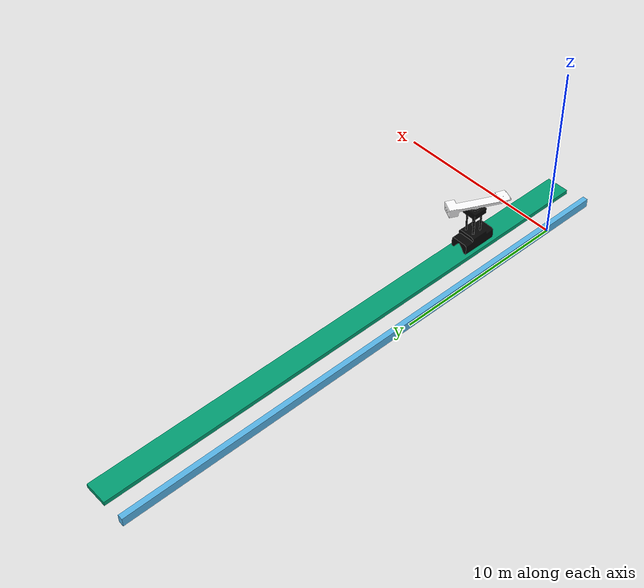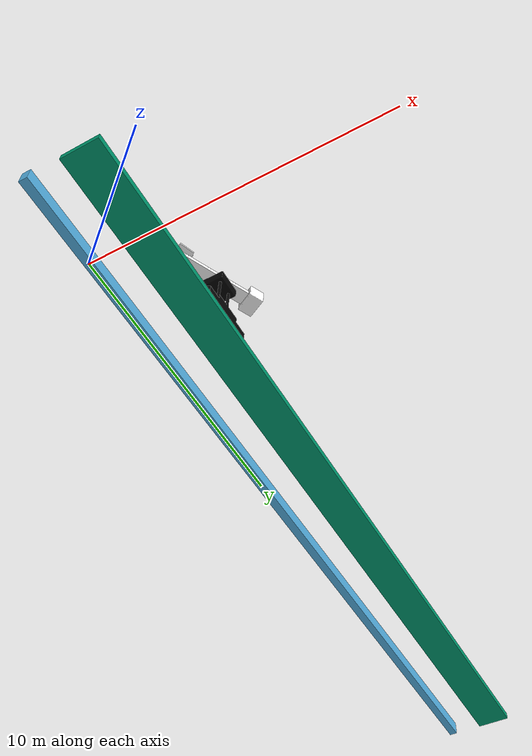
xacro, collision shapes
<?xml version="1.0"?>
<robot xmlns:xacro="http://ros.org/wiki/xacro">

    <link name="world"/>

    <link name="boat_link">
       <inertial>
                <origin    xyz="0.0029912 -0.083551 0.56051"   rpy="0 0 0" />
                <mass value="300.98" />
                <inertia  ixx="65.942" ixy="-0.0012689" ixz="-0.044489"
                        iyy="74.027" iyz="-0.19476"
                        izz="15.95" />
        </inertial>
        <visual>
            <geometry>
            <mesh filename="package://robot_slider_description/meshes/boatwithstand.dae" scale="1 1 1"/>
            </geometry>

        </visual>
        <collision>
            <origin xyz="0 0.25 -12" rpy="0 1.57 0 " />
            <geometry>
                <box size="30 0.5 0.3"/>
            </geometry>
        </collision>
    </link>

    <link name="rail_stand_link_right">
        <inertial>
                <origin    xyz="0.0029912 -0.083551 0.56051"   rpy="0 0 0" />
                <mass value="300.98" />
                <inertia  ixx="65.942" ixy="-0.0012689" ixz="-0.044489"
                        iyy="74.027" iyz="-0.19476"
                        izz="15.95" />
        </inertial>

        <visual>
            <geometry>
            <mesh filename="package://robot_slider_description/meshes/rail_stand.dae" scale="1 1 1"/>
            </geometry>

        </visual>
        <collision>
            <origin xyz="0.7 0.125 -12" rpy=" 0 1.57 0.0" />
            <geometry>
              <box size="30 0.25 1.3"/>
            </geometry>
        </collision>
    </link>

    <joint name="boat_world_joint" type="fixed">
        <parent link="world" />
        <child link = "boat_link" />
        <origin xyz="0 0 0" rpy="1.57 0.0 0" />
    </joint>

    <joint name="rail_stand_right_world_joint" type="fixed">
        <parent link="world" />
        <child link = "rail_stand_link_right" />
        <origin xyz="1.2 0 0" rpy="1.57 0.0 0" />
    </joint>

   <xacro:include filename="Robotstand.xacro"/>

    <joint name="slider_link_rail_stand_right_joint" type="prismatic">
        <parent link="rail_stand_link_right" />
        <child link = "slider_link" />
        <origin xyz="0 0 0" rpy="-1.57 0.0 0" />
        <axis xyz="0.0 1 0.0"/>
        <limit lower="-1.8" upper="21" effort="3" velocity="2"/>
    </joint>

</robot>

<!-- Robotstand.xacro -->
<robot xmlns:xacro="http://www.ros.org/wiki/xacro">

  <link name="slider_link">
    <inertial>
      <origin
        xyz="0.75 1.0487 -3.6486"  rpy="0 0 0" />
      <mass value="1317.8" />
      <inertia ixx="353.39"  ixy="3.9338E-12"  ixz="3.5103E-13"
               iyy="420.06"  iyz="4.9967E-13"
               izz="170.54" />
      </inertial>
    <visual>
      <origin  xyz="0 0 0"     rpy="0 0 0" />
      <geometry>
        <mesh     filename="package://robot_slider_description/meshes/slider_link.STL" />
      </geometry>
      <material  name="">
        <color   rgba="0.019608 0.019608 0.019608 1" />
      </material>
    </visual>
    <collision>
      <origin  xyz="0 0 0"   rpy="0 0 0" />
      <geometry>
        <mesh   filename="package://robot_slider_description/meshes/slider_link.STL" />
      </geometry>
    </collision>
  </link>

  <link name="robot_stand">
    <inertial>
      <origin    xyz="0.0029912 -0.083551 0.56051"   rpy="0 0 0" />
      <mass value="300.98" />
      <inertia  ixx="65.942" ixy="-0.0012689" ixz="-0.044489"
                iyy="74.027" iyz="-0.19476"
                izz="15.95" />
      </inertial>
    <visual>
      <origin  xyz="0 0 0"  rpy="0 0 0" />
      <geometry>
        <mesh  filename="package://robot_slider_description/meshes/robot_stand.STL" />
      </geometry>
      <material name="">
        <color  rgba="0.99608 0.99608 1 1" />
      </material>
    </visual>
    <collision>
      <origin xyz="0 0 0"  rpy="0 0 0" />
      <geometry>
        <mesh  filename="package://robot_slider_description/meshes/robot_stand.STL" />
      </geometry>
    </collision>
  </link>

  <joint  name="robot_stand_slider_joint"   type="revolute">
        <origin   xyz="0.75 3.6486 2.7"  rpy="-1.5708 0 -0.46063" />
        <parent   link="slider_link" />
        <child    link="robot_stand" />
        <axis     xyz="0 1 0" />
        <limit    lower="-${pi/4}"   upper="${pi}"    effort="1" velocity="1" />
  </joint>

</robot>
